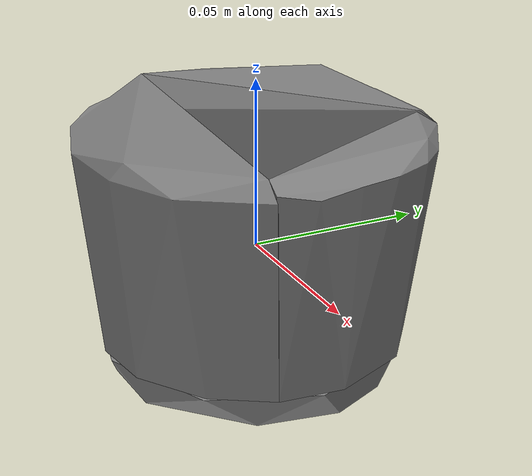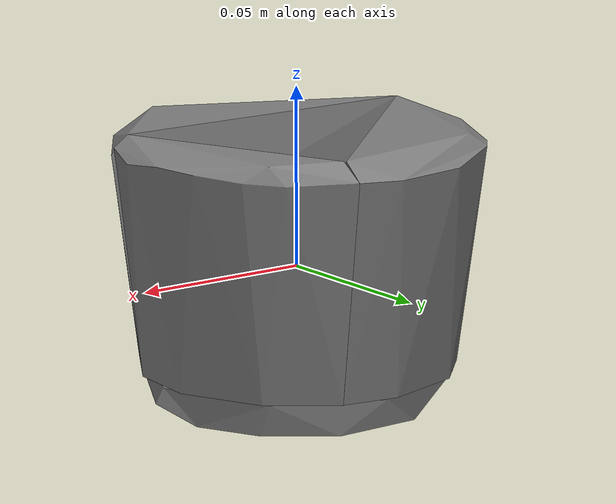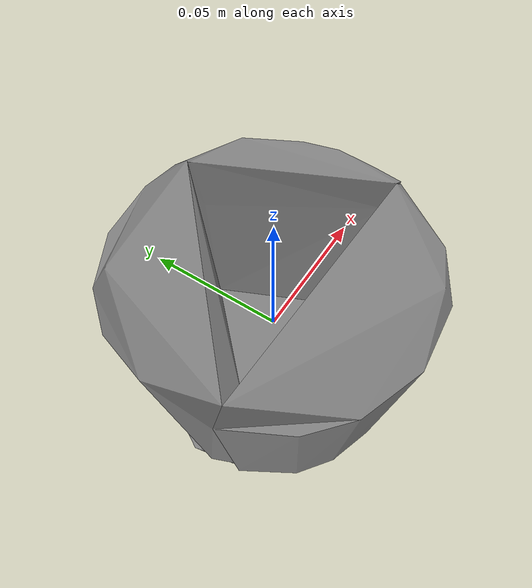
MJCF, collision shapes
<mujoco model="j_cups">
  <compiler angle="radian" />

  <asset>
    <mesh name="j_cups_visual_mesh" file="j_cups/textured.obj" />
    <mesh name="j_cups_collision_mesh_0" file="j_cups/textured_coacd_0.stl" />
    <mesh name="j_cups_collision_mesh_1" file="j_cups/textured_coacd_1.stl" />
    <mesh name="j_cups_collision_mesh_2" file="j_cups/textured_coacd_2.stl" />
    <mesh name="j_cups_collision_mesh_3" file="j_cups/textured_coacd_3.stl" />
    <texture name="j_cups_texture" type="2d" file="j_cups/texture_map.png" />
    <material name="j_cups_material" texture="j_cups_texture" />
  </asset>

  <worldbody>
    <body name="j_cups" pos="0 0 0" euler="0 0 0">
      <freejoint name="j_cups_joint" />
      <geom name="j_cups_visual_geom" type="mesh" mesh="j_cups_visual_mesh" material="j_cups_material" pos="0.02316916577060105 0.016288097645136355 -0.036470255939330766" euler="0 0 0" contype="0" conaffinity="0" group="0" />
      <geom name="j_cups_collision_geom_0" type="mesh" mesh="j_cups_collision_mesh_0" pos="0.02316916577060105 0.016288097645136355 -0.036470255939330766" euler="0 0 0" contype="1" conaffinity="1" group="3" />
      <geom name="j_cups_collision_geom_1" type="mesh" mesh="j_cups_collision_mesh_1" pos="0.02316916577060105 0.016288097645136355 -0.036470255939330766" euler="0 0 0" contype="1" conaffinity="1" group="3" />
      <geom name="j_cups_collision_geom_2" type="mesh" mesh="j_cups_collision_mesh_2" pos="0.02316916577060105 0.016288097645136355 -0.036470255939330766" euler="0 0 0" contype="1" conaffinity="1" group="3" />
      <geom name="j_cups_collision_geom_3" type="mesh" mesh="j_cups_collision_mesh_3" pos="0.02316916577060105 0.016288097645136355 -0.036470255939330766" euler="0 0 0" contype="1" conaffinity="1" group="3" />
      <inertial pos="0 0 0" euler="0 0 0" mass="0.038" diaginertia="0.001 0.001 0.001" />
    </body>
  </worldbody>
</mujoco>
